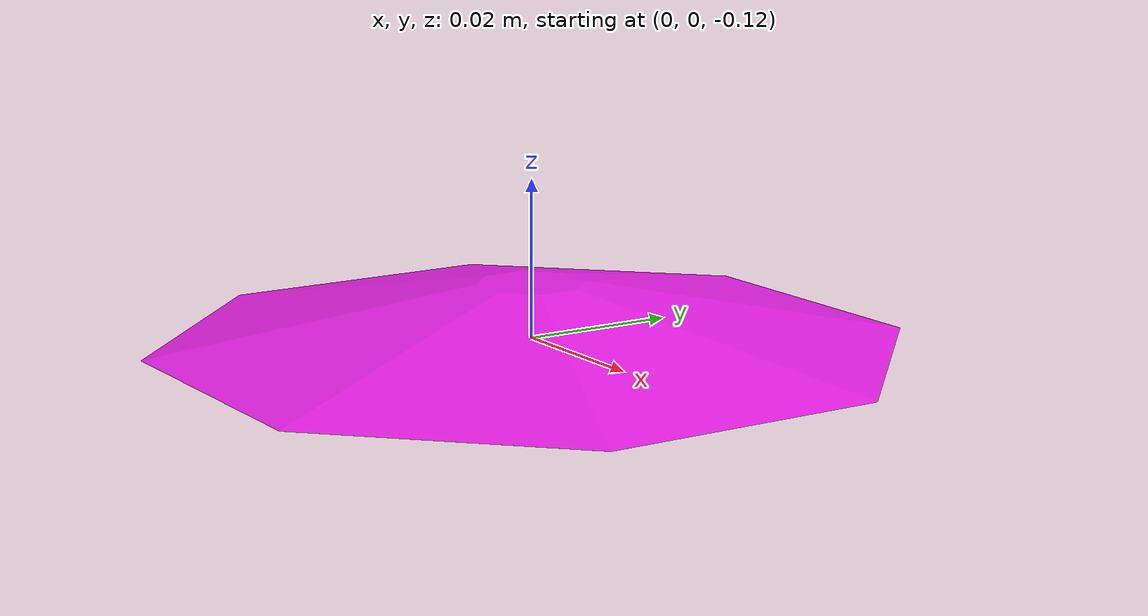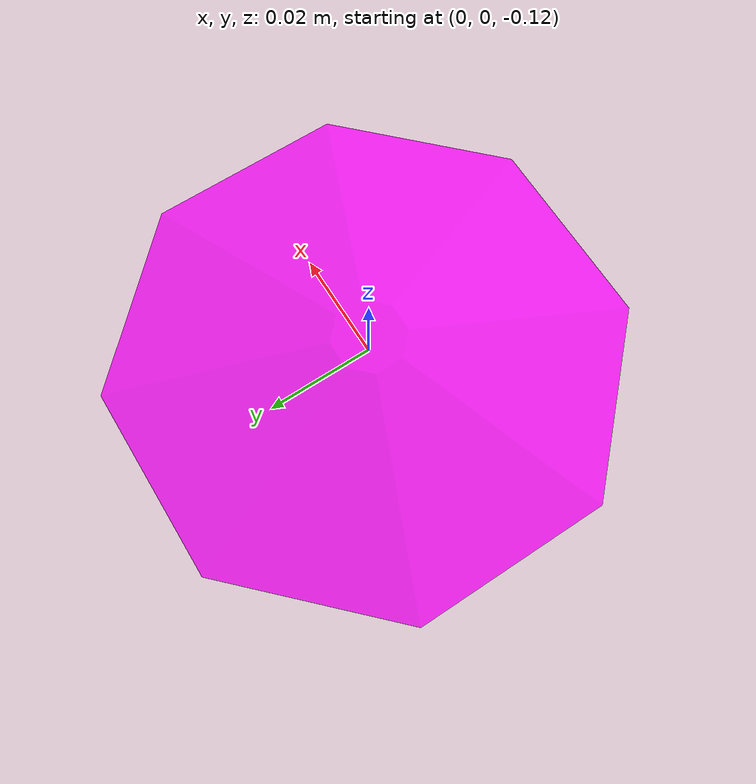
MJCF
<mujoco model="bottom_watertight_tiny">
  <default>
    <default group="2" type="mesh" contype="0" conaffinity="0">
      <geom group="2" type="mesh" contype="0" conaffinity="0"/>
    </default>
    <default group="3" type="mesh">
      <geom group="3" type="mesh"/>
    </default>
  </default>
  <asset>
    <mesh file="bottom_watertight_tiny.obj"/>
    <mesh file="bottom_watertight_tiny_collision_0.obj"/>
    <mesh file="bottom_watertight_tiny_collision_1.obj"/>
    <mesh file="bottom_watertight_tiny_collision_2.obj"/>
    <mesh file="bottom_watertight_tiny_collision_3.obj"/>
    <mesh file="bottom_watertight_tiny_collision_4.obj"/>
    <mesh file="bottom_watertight_tiny_collision_5.obj"/>
    <mesh file="bottom_watertight_tiny_collision_6.obj"/>
    <mesh file="bottom_watertight_tiny_collision_7.obj"/>
  </asset>
  <worldbody>
    <body name="bottom_watertight_tiny">
      <freejoint/>
      <geom mesh="bottom_watertight_tiny" group="2" type="mesh" rgba="1 0 1 0.8" contype="0" conaffinity="0"/>
      <geom mesh="bottom_watertight_tiny_collision_0" rgba="0.6314106801659956 0.1999537226633229 0.04367236365176408 1" group="3" type="mesh"/>
      <geom mesh="bottom_watertight_tiny_collision_1" rgba="0.3376287619610858 0.05676400421257011 0.3946262800724707 1" group="3" type="mesh"/>
      <geom mesh="bottom_watertight_tiny_collision_2" rgba="0.8177034913042877 0.41774409011979485 0.20005066704164598 1" group="3" type="mesh"/>
      <geom mesh="bottom_watertight_tiny_collision_3" rgba="0.6440111376771793 0.9565767175084144 0.8851302876745779 1" group="3" type="mesh"/>
      <geom mesh="bottom_watertight_tiny_collision_4" rgba="0.2563998732695485 0.49045204348459703 0.6599633833332343 1" group="3" type="mesh"/>
      <geom mesh="bottom_watertight_tiny_collision_5" rgba="0.6087178066960139 0.5802991022827659 0.3536518046503532 1" group="3" type="mesh"/>
      <geom mesh="bottom_watertight_tiny_collision_6" rgba="0.17447299473612843 0.7633758455335102 0.9931426743714797 1" group="3" type="mesh"/>
      <geom mesh="bottom_watertight_tiny_collision_7" rgba="0.558048585606055 0.17529072858194628 0.5973703647731613 1" group="3" type="mesh"/>
    </body>
  </worldbody>
</mujoco>
